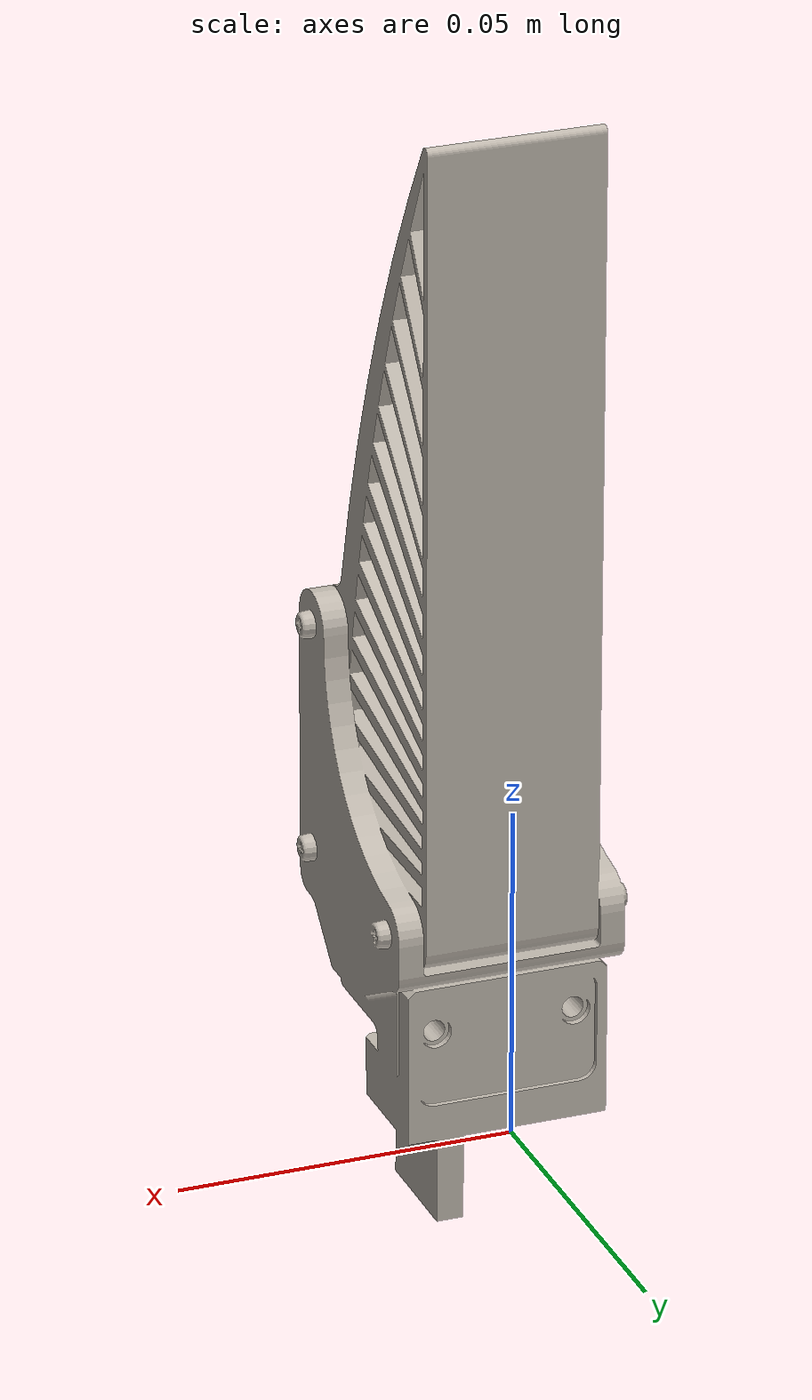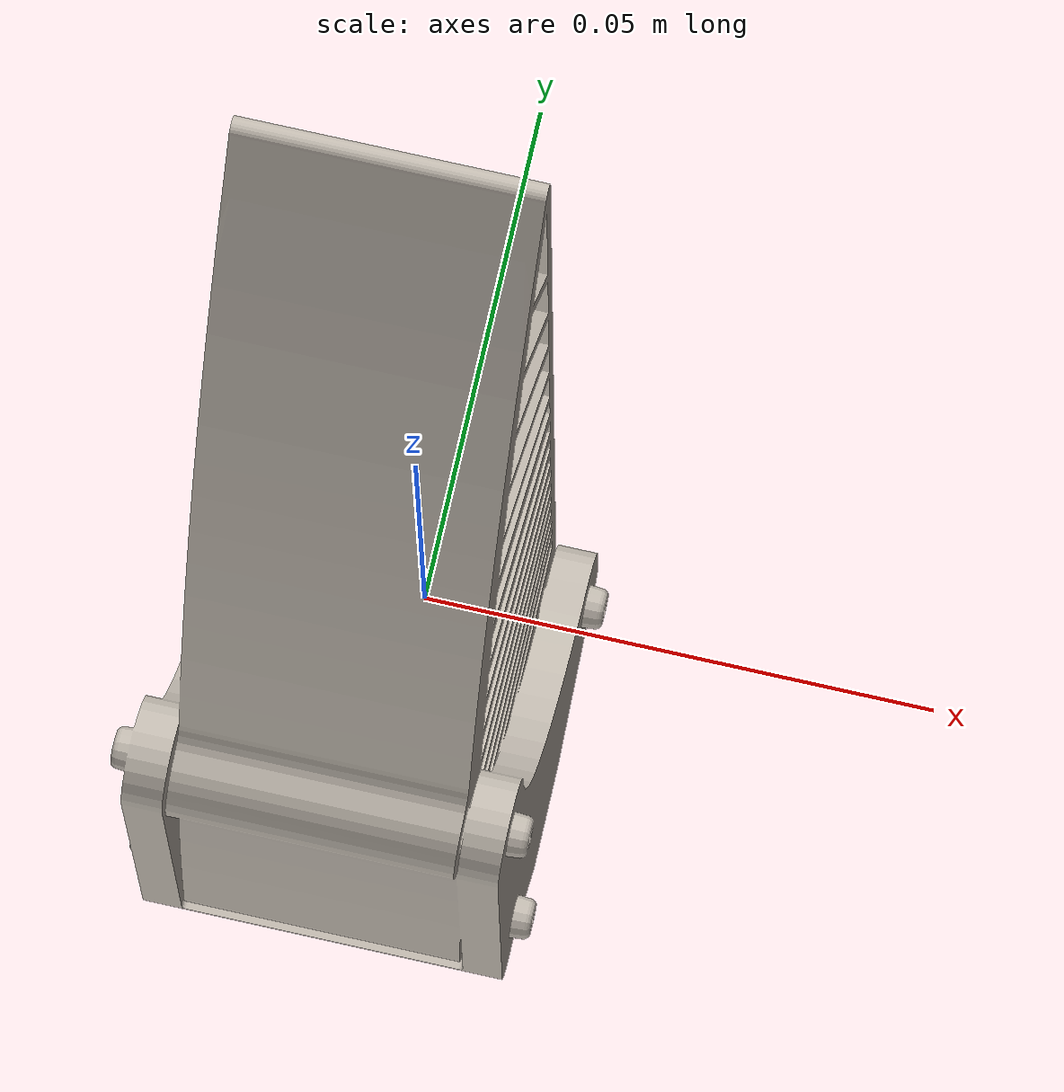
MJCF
<mujoco model="finray_finger">
    <compiler angle="radian" autolimits="true" />
    <option impratio="10" />
    <default>
        <default class="visual">
            <geom type="mesh" contype="0" conaffinity="0" group="2" />
        </default>
        <default class="collision">
            <geom type="mesh" group="3" />
        </default>
    </default>

    <asset>
        <texture type="2d" name="texture" file="one_piece_wide_grasp_finray_finger_color.png" />
        <material name="finray_material" texture="texture" specular="0.5" shininess="0.0" />
        <mesh name="finger" file="one_piece_wide_grasp_finray_finger.obj" scale="1.0 1.0 1.0" />
    </asset>
    <worldbody>
        <body name="base">
            <geom mesh="finger" type="mesh" class="visual" mass="0.1" material="finray_material" />
        </body>
    </worldbody>
</mujoco>
